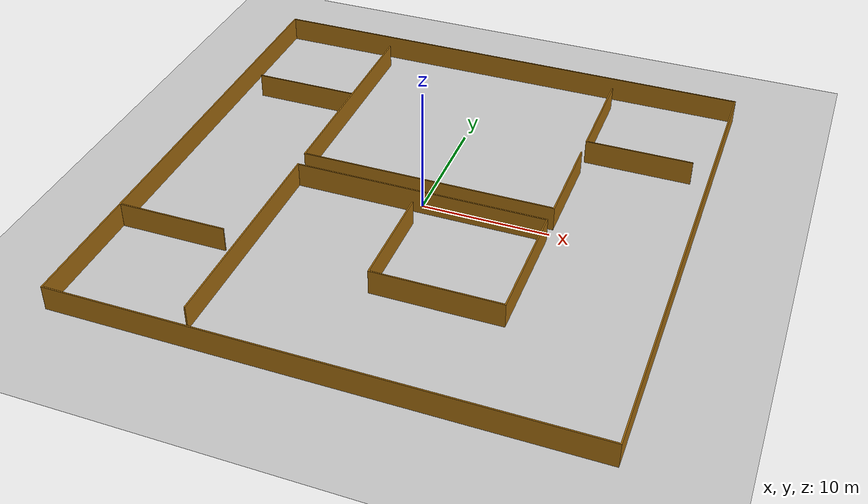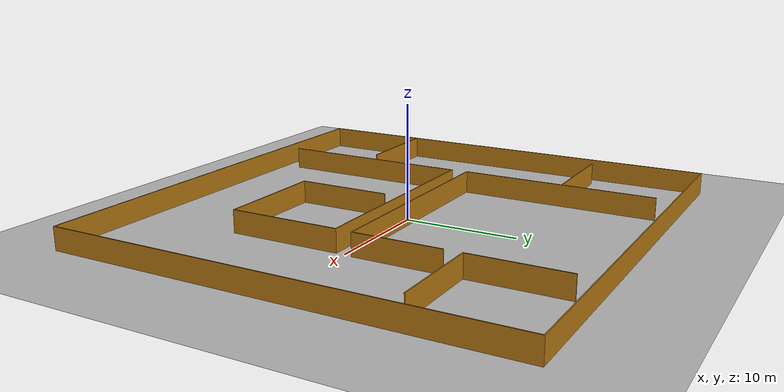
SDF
<sdf version="1.6">
 <world name="default">
  <gravity>0 0 -9.8</gravity>
  <magnetic_field>6e-06 2.3e-05 -4.2e-05</magnetic_field>
  <atmosphere type="adiabatic"/>
  <physics name="default_physics" default="0" type="ode">
   <max_step_size>0.001</max_step_size>
   <real_time_factor>1</real_time_factor>
   <real_time_update_rate>1000</real_time_update_rate>
  </physics>
  <scene><ambient>0.4 0.4 0.4 1</ambient><background>0.7 0.7 0.7 1</background><shadows>1</shadows></scene>
  <audio><device>default</device></audio>
  <spherical_coordinates>
   <surface_model>EARTH_WGS84</surface_model>
   <latitude_deg>0</latitude_deg>
   <longitude_deg>0</longitude_deg>
   <elevation>0</elevation>
   <heading_deg>0</heading_deg>
  </spherical_coordinates>
  <model name="ground_plane">
   <static>1</static>
   <link name="link">
    <collision name="collision">
     <geometry><plane><normal>0 0 1</normal><size>100 100</size></plane></geometry>
     <surface>
      <contact><collide_bitmask>65535</collide_bitmask></contact>
      <friction><ode><mu>100</mu><mu2>50</mu2></ode></friction>
     </surface>
    </collision>
    <visual name="visual">
     <cast_shadows>0</cast_shadows>
     <geometry><plane><normal>0 0 1</normal><size>100 100</size></plane></geometry>
     <material>
      <script><uri>file://media/materials/scripts/gazebo.material</uri><name>Gazebo/Grey</name></script>
     </material>
    </visual>
   </link>
  </model>
  <model name="root_home_walls">
   <static>1</static>
   <link name="root_home_walls">
    <collision name="collision">
     <geometry><mesh><uri>model://root_home_walls/meshes/root_home_walls.dae</uri></mesh></geometry>
    </collision>
    <visual name="visual">
     <geometry><mesh><uri>model://root_home_walls/meshes/root_home_walls.dae</uri></mesh></geometry>
     <cast_shadows>0</cast_shadows>
    </visual>
   </link>
  </model>
  <light name="user_point_light_0" type="point">
   <pose>-17.048 -12.8557 1 0 -0 0</pose>
   <diffuse>0.5 0.5 0.5 1</diffuse>
   <specular>0.1 0.1 0.1 1</specular>
   <attenuation>
    <range>20</range>
    <constant>0.5</constant>
    <linear>0.01</linear>
    <quadratic>0.001</quadratic>
   </attenuation>
   <cast_shadows>0</cast_shadows>
   <direction>0 0 -1</direction>
  </light>
  <light name="user_point_light_1" type="point">
   <pose>-13.2598 -17.1761 1 0 -0 0</pose>
   <diffuse>0.5 0.5 0.5 1</diffuse>
   <specular>0.1 0.1 0.1 1</specular>
   <attenuation>
    <range>20</range>
    <constant>0.5</constant>
    <linear>0.01</linear>
    <quadratic>0.001</quadratic>
   </attenuation>
   <cast_shadows>0</cast_shadows>
   <direction>0 0 -1</direction>
  </light>
  <light name="user_point_light_2" type="point">
   <pose>-15.4556 -4.80289 1 0 -0 0</pose>
   <diffuse>0.5 0.5 0.5 1</diffuse>
   <specular>0.1 0.1 0.1 1</specular>
   <attenuation>
    <range>20</range>
    <constant>0.5</constant>
    <linear>0.01</linear>
    <quadratic>0.001</quadratic>
   </attenuation>
   <cast_shadows>0</cast_shadows>
   <direction>0 0 -1</direction>
  </light>
  <light name="user_point_light_3" type="point">
   <pose>-15.1858 4.29132 1 0 -0 0</pose>
   <diffuse>0.5 0.5 0.5 1</diffuse>
   <specular>0.1 0.1 0.1 1</specular>
   <attenuation>
    <range>20</range>
    <constant>0.5</constant>
    <linear>0.01</linear>
    <quadratic>0.001</quadratic>
   </attenuation>
   <cast_shadows>0</cast_shadows>
   <direction>0 0 -1</direction>
  </light>
  <light name="user_point_light_4" type="point">
   <pose>-17.0377 17.0581 1 0 -0 0</pose>
   <diffuse>0.5 0.5 0.5 1</diffuse>
   <specular>0.1 0.1 0.1 1</specular>
   <attenuation>
    <range>20</range>
    <constant>0.5</constant>
    <linear>0.01</linear>
    <quadratic>0.001</quadratic>
   </attenuation>
   <cast_shadows>0</cast_shadows>
   <direction>0 0 -1</direction>
  </light>
  <light name="user_point_light_5" type="point">
   <pose>-12.1945 12.3236 1 0 -0 0</pose>
   <diffuse>0.5 0.5 0.5 1</diffuse>
   <specular>0.1 0.1 0.1 1</specular>
   <attenuation>
    <range>20</range>
    <constant>0.5</constant>
    <linear>0.01</linear>
    <quadratic>0.001</quadratic>
   </attenuation>
   <cast_shadows>0</cast_shadows>
   <direction>0 0 -1</direction>
  </light>
  <light name="user_point_light_6" type="point">
   <pose>-4.29431 -14.9823 1 0 -0 0</pose>
   <diffuse>0.5 0.5 0.5 1</diffuse>
   <specular>0.1 0.1 0.1 1</specular>
   <attenuation>
    <range>20</range>
    <constant>0.5</constant>
    <linear>0.01</linear>
    <quadratic>0.001</quadratic>
   </attenuation>
   <cast_shadows>0</cast_shadows>
   <direction>0 0 -1</direction>
  </light>
  <light name="user_point_light_7" type="point">
   <pose>-4.65473 -5.96628 1 0 -0 0</pose>
   <diffuse>0.5 0.5 0.5 1</diffuse>
   <specular>0.1 0.1 0.1 1</specular>
   <attenuation>
    <range>20</range>
    <constant>0.5</constant>
    <linear>0.01</linear>
    <quadratic>0.001</quadratic>
   </attenuation>
   <cast_shadows>0</cast_shadows>
   <direction>0 0 -1</direction>
  </light>
  <light name="user_point_light_8" type="point">
   <pose>-4.48048 6.08078 1 0 -0 0</pose>
   <diffuse>0.5 0.5 0.5 1</diffuse>
   <specular>0.1 0.1 0.1 1</specular>
   <attenuation>
    <range>20</range>
    <constant>0.5</constant>
    <linear>0.01</linear>
    <quadratic>0.001</quadratic>
   </attenuation>
   <cast_shadows>0</cast_shadows>
   <direction>0 0 -1</direction>
  </light>
  <light name="user_point_light_9" type="point">
   <pose>-4.55125 15.1801 1 0 -0 0</pose>
   <diffuse>0.5 0.5 0.5 1</diffuse>
   <specular>0.1 0.1 0.1 1</specular>
   <attenuation>
    <range>20</range>
    <constant>0.5</constant>
    <linear>0.01</linear>
    <quadratic>0.001</quadratic>
   </attenuation>
   <cast_shadows>0</cast_shadows>
   <direction>0 0 -1</direction>
  </light>
  <light name="user_point_light_10" type="point">
   <pose>4.76414 -15.4433 1 0 -0 0</pose>
   <diffuse>0.5 0.5 0.5 1</diffuse>
   <specular>0.1 0.1 0.1 1</specular>
   <attenuation>
    <range>20</range>
    <constant>0.5</constant>
    <linear>0.01</linear>
    <quadratic>0.001</quadratic>
   </attenuation>
   <cast_shadows>0</cast_shadows>
   <direction>0 0 -1</direction>
  </light>
  <light name="user_point_light_11" type="point">
   <pose>5.20727 -5.7314 1 0 -0 0</pose>
   <diffuse>0.5 0.5 0.5 1</diffuse>
   <specular>0.1 0.1 0.1 1</specular>
   <attenuation>
    <range>20</range>
    <constant>0.5</constant>
    <linear>0.01</linear>
    <quadratic>0.001</quadratic>
   </attenuation>
   <cast_shadows>0</cast_shadows>
   <direction>0 0 -1</direction>
  </light>
  <light name="user_point_light_12" type="point">
   <pose>15.0607 -14.9947 1 0 -0 0</pose>
   <diffuse>0.5 0.5 0.5 1</diffuse>
   <specular>0.1 0.1 0.1 1</specular>
   <attenuation>
    <range>20</range>
    <constant>0.5</constant>
    <linear>0.01</linear>
    <quadratic>0.001</quadratic>
   </attenuation>
   <cast_shadows>0</cast_shadows>
   <direction>0 0 -1</direction>
  </light>
  <light name="user_point_light_13" type="point">
   <pose>15.5301 -5.71181 1 0 -0 0</pose>
   <diffuse>0.5 0.5 0.5 1</diffuse>
   <specular>0.1 0.1 0.1 1</specular>
   <attenuation>
    <range>20</range>
    <constant>0.5</constant>
    <linear>0.01</linear>
    <quadratic>0.001</quadratic>
   </attenuation>
   <cast_shadows>0</cast_shadows>
   <direction>0 0 -1</direction>
  </light>
  <light name="user_point_light_14" type="point">
   <pose>15.3173 4.58379 1 0 -0 0</pose>
   <diffuse>0.5 0.5 0.5 1</diffuse>
   <specular>0.1 0.1 0.1 1</specular>
   <attenuation>
    <range>20</range>
    <constant>0.5</constant>
    <linear>0.01</linear>
    <quadratic>0.001</quadratic>
   </attenuation>
   <cast_shadows>0</cast_shadows>
   <direction>0 0 -1</direction>
  </light>
  <light name="user_point_light_15" type="point">
   <pose>15.579 14.828 1 0 -0 0</pose>
   <diffuse>0.5 0.5 0.5 1</diffuse>
   <specular>0.1 0.1 0.1 1</specular>
   <attenuation>
    <range>20</range>
    <constant>0.5</constant>
    <linear>0.01</linear>
    <quadratic>0.001</quadratic>
   </attenuation>
   <cast_shadows>0</cast_shadows>
   <direction>0 0 -1</direction>
  </light>
  <light name="user_point_light_16" type="point">
   <pose>4.36587 6.22042 1 0 -0 0</pose>
   <diffuse>0.5 0.5 0.5 1</diffuse>
   <specular>0.1 0.1 0.1 1</specular>
   <attenuation>
    <range>20</range>
    <constant>0.5</constant>
    <linear>0.01</linear>
    <quadratic>0.001</quadratic>
   </attenuation>
   <cast_shadows>0</cast_shadows>
   <direction>0 0 -1</direction>
  </light>
  <light name="user_point_light_17" type="point">
   <pose>4.80029 14.3732 1 0 -0 0</pose>
   <diffuse>0.5 0.5 0.5 1</diffuse>
   <specular>0.1 0.1 0.1 1</specular>
   <attenuation>
    <range>20</range>
    <constant>0.5</constant>
    <linear>0.01</linear>
    <quadratic>0.001</quadratic>
   </attenuation>
   <cast_shadows>0</cast_shadows>
   <direction>0 0 -1</direction>
  </light>
 </world>
</sdf>
